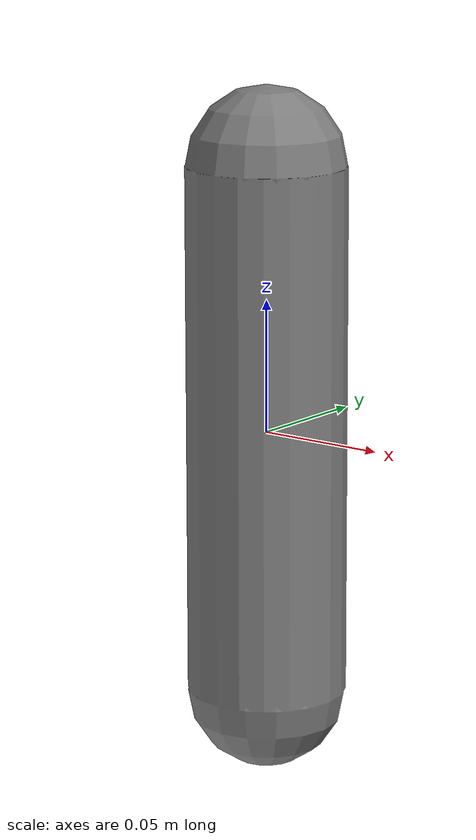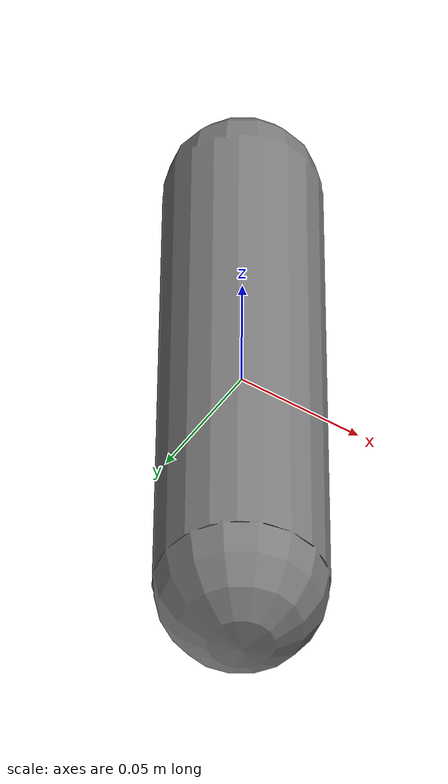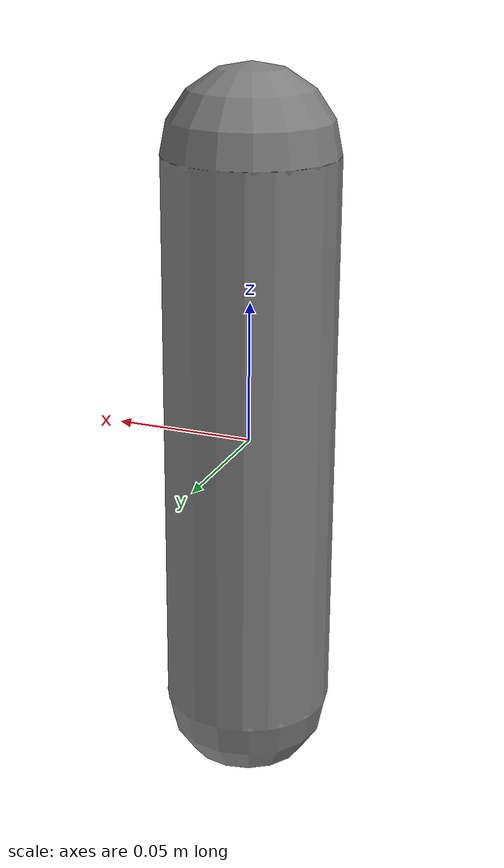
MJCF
<mujoco model="actuator_plugin_load_test">
  <extension>
    <plugin plugin="MujocoRosUtils::ActuatorCommand"/>
  </extension>
  <worldbody>
    <body name="actuated_body">
      <joint name="load_test_joint" type="hinge"/>
      <geom type="capsule" size="0.03 0.1" mass="1"/>
    </body>
  </worldbody>
  <actuator>
    <position name="load_test_actuator" joint="load_test_joint"/>
    <plugin plugin="MujocoRosUtils::ActuatorCommand" joint="load_test_joint">
      <config key="topic_name" value="/plugin_load_test/command"/>
    </plugin>
  </actuator>
</mujoco>
